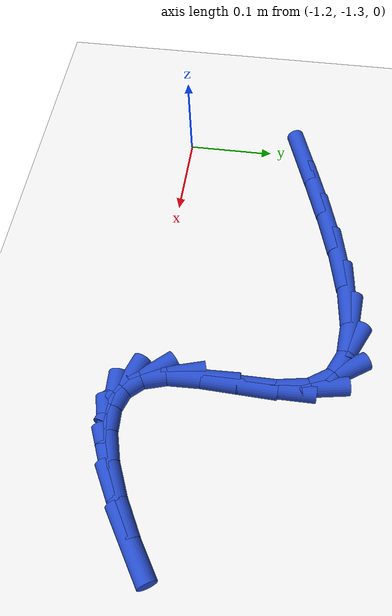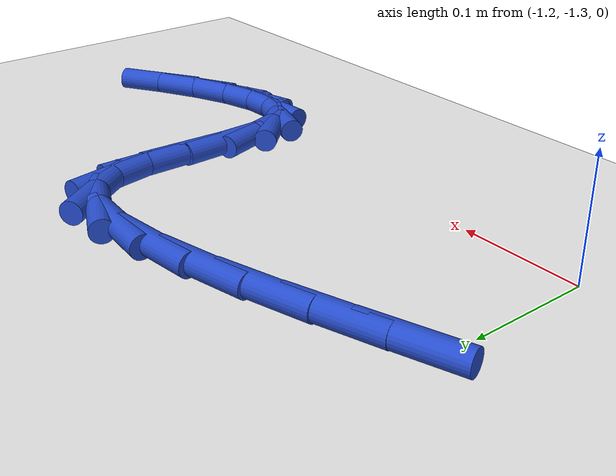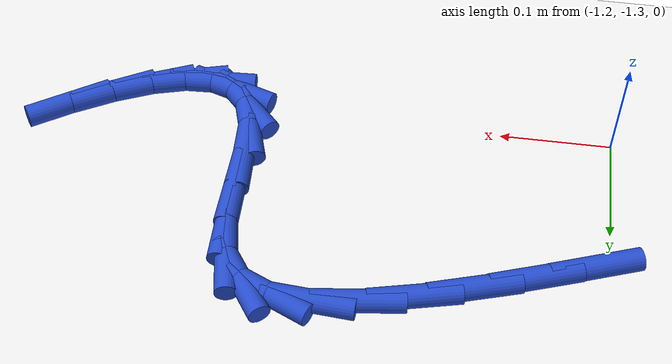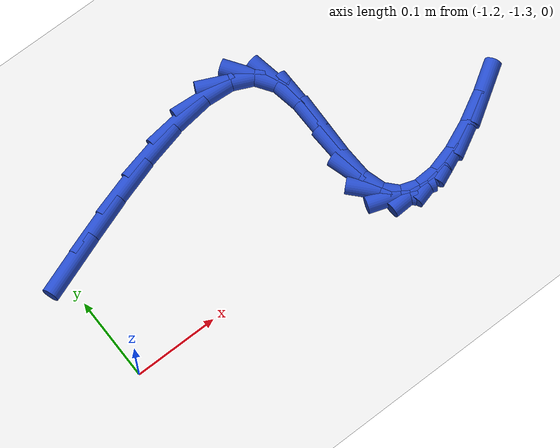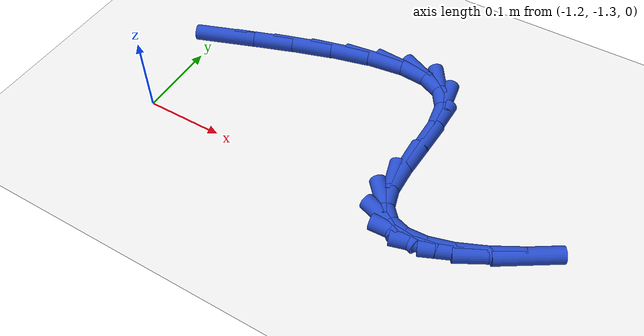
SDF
<sdf version="1.6">
 <world name="default">
  <model name="ground_plane">
   <static>1</static>
   <link name="link">
    <collision name="collision">
     <geometry><plane><normal>0 0 1</normal><size>100 100</size></plane></geometry>
     <surface><friction><ode><mu>100</mu><mu2>50</mu2></ode></friction></surface>
    </collision>
    <visual name="visual">
     <cast_shadows>0</cast_shadows>
     <geometry><plane><normal>0 0 1</normal><size>100 100</size></plane></geometry>
     <material>
      <script><uri>file://media/materials/scripts/gazebo.material</uri><name>Gazebo/WhiteGlow</name></script>
     </material>
    </visual>
   </link>
  </model>
  <model name="line">
   <link name="link_181">
    <pose>-1.1869989615635659 -1.158813188304323 0.01 0 1.57 0.3467892698958422</pose>
    <collision name="collision">
     <geometry><cylinder><radius>0.01</radius><length>0.08</length></cylinder></geometry>
    </collision>
    <visual name="visual">
     <material>
      <script><name>Gazebo/Blue</name><uri>file://media/materials/scripts/gazebo.material</uri></script>
     </material>
     <geometry><cylinder><radius>0.01</radius><length>0.08</length></cylinder></geometry>
    </visual>
   </link>
   <link name="link_182">
    <pose>-1.137817968798792 -1.1410394629971914 0.01 0 1.57 0.33352849293146286</pose>
    <collision name="collision">
     <geometry><cylinder><radius>0.01</radius><length>0.08</length></cylinder></geometry>
    </collision>
    <visual name="visual">
     <material>
      <script><name>Gazebo/Blue</name><uri>file://media/materials/scripts/gazebo.material</uri></script>
     </material>
     <geometry><cylinder><radius>0.01</radius><length>0.08</length></cylinder></geometry>
    </visual>
   </link>
   <link name="link_183">
    <pose>-1.088065815022067 -1.1238017287109445 0.01 0 1.57 0.29885545738115465</pose>
    <collision name="collision">
     <geometry><cylinder><radius>0.01</radius><length>0.08</length></cylinder></geometry>
    </collision>
    <visual name="visual">
     <material>
      <script><name>Gazebo/Blue</name><uri>file://media/materials/scripts/gazebo.material</uri></script>
     </material>
     <geometry><cylinder><radius>0.01</radius><length>0.08</length></cylinder></geometry>
    </visual>
   </link>
   <link name="link_184">
    <pose>-1.0395465777060409 -1.108853794461204 0.01 0 1.57 0.23530769621935638</pose>
    <collision name="collision">
     <geometry><cylinder><radius>0.01</radius><length>0.08</length></cylinder></geometry>
    </collision>
    <visual name="visual">
     <material>
      <script><name>Gazebo/Blue</name><uri>file://media/materials/scripts/gazebo.material</uri></script>
     </material>
     <geometry><cylinder><radius>0.01</radius><length>0.08</length></cylinder></geometry>
    </visual>
   </link>
   <link name="link_185">
    <pose>-0.9940643343233619 -1.0979494692635923 0.01 0 1.57 0.12500327289554553</pose>
    <collision name="collision">
     <geometry><cylinder><radius>0.01</radius><length>0.08</length></cylinder></geometry>
    </collision>
    <visual name="visual">
     <material>
      <script><name>Gazebo/Blue</name><uri>file://media/materials/scripts/gazebo.material</uri></script>
     </material>
     <geometry><cylinder><radius>0.01</radius><length>0.08</length></cylinder></geometry>
    </visual>
   </link>
   <link name="link_186">
    <pose>-0.9534231623466829 -1.0928425621337317 0.01 0 1.57 -0.07177665701591197</pose>
    <collision name="collision">
     <geometry><cylinder><radius>0.01</radius><length>0.08</length></cylinder></geometry>
    </collision>
    <visual name="visual">
     <material>
      <script><name>Gazebo/Blue</name><uri>file://media/materials/scripts/gazebo.material</uri></script>
     </material>
     <geometry><cylinder><radius>0.01</radius><length>0.08</length></cylinder></geometry>
    </visual>
   </link>
   <link name="link_187">
    <pose>-0.9194271392486515 -1.0952868820872437 0.01 0 1.57 -0.4310686164614578</pose>
    <collision name="collision">
     <geometry><cylinder><radius>0.01</radius><length>0.08</length></cylinder></geometry>
    </collision>
    <visual name="visual">
     <material>
      <script><name>Gazebo/Blue</name><uri>file://media/materials/scripts/gazebo.material</uri></script>
     </material>
     <geometry><cylinder><radius>0.01</radius><length>0.08</length></cylinder></geometry>
    </visual>
   </link>
   <link name="link_188">
    <pose>-0.8938803425019173 -1.10703623813975 0.01 0 1.57 -0.9777459284194076</pose>
    <collision name="collision">
     <geometry><cylinder><radius>0.01</radius><length>0.08</length></cylinder></geometry>
    </collision>
    <visual name="visual">
     <material>
      <script><name>Gazebo/Blue</name><uri>file://media/materials/scripts/gazebo.material</uri></script>
     </material>
     <geometry><cylinder><radius>0.01</radius><length>0.08</length></cylinder></geometry>
    </visual>
   </link>
   <link name="link_189">
    <pose>-0.8785419867807764 -1.1297940297335651 0.01 0 1.57 -1.3996971862016356</pose>
    <collision name="collision">
     <geometry><cylinder><radius>0.01</radius><length>0.08</length></cylinder></geometry>
    </collision>
    <visual name="visual">
     <material>
      <script><name>Gazebo/Blue</name><uri>file://media/materials/scripts/gazebo.material</uri></script>
     </material>
     <geometry><cylinder><radius>0.01</radius><length>0.08</length></cylinder></geometry>
    </visual>
   </link>
   <link name="link_190">
    <pose>-0.8728616594739608 -1.1626684698706167 0.01 0 1.57 1.569455895906045</pose>
    <collision name="collision">
     <geometry><cylinder><radius>0.01</radius><length>0.08</length></cylinder></geometry>
    </collision>
    <visual name="visual">
     <material>
      <script><name>Gazebo/Blue</name><uri>file://media/materials/scripts/gazebo.material</uri></script>
     </material>
     <geometry><cylinder><radius>0.01</radius><length>0.08</length></cylinder></geometry>
    </visual>
   </link>
   <link name="link_191">
    <pose>-0.8729130060005719 -1.200974432741035 0.01 0 1.57 1.5298179619590713</pose>
    <collision name="collision">
     <geometry><cylinder><radius>0.01</radius><length>0.08</length></cylinder></geometry>
    </collision>
    <visual name="visual">
     <material>
      <script><name>Gazebo/Blue</name><uri>file://media/materials/scripts/gazebo.material</uri></script>
     </material>
     <geometry><cylinder><radius>0.01</radius><length>0.08</length></cylinder></geometry>
    </visual>
   </link>
   <link name="link_192">
    <pose>-0.8745018662266067 -1.23972587586999 0.01 0 1.57 -1.5395945674939941</pose>
    <collision name="collision">
     <geometry><cylinder><radius>0.01</radius><length>0.08</length></cylinder></geometry>
    </collision>
    <visual name="visual">
     <material>
      <script><name>Gazebo/Blue</name><uri>file://media/materials/scripts/gazebo.material</uri></script>
     </material>
     <geometry><cylinder><radius>0.01</radius><length>0.08</length></cylinder></geometry>
    </visual>
   </link>
   <link name="link_193">
    <pose>-0.8734340800180621 -1.2739367567826478 0.01 0 1.57 -1.2845378045652014</pose>
    <collision name="collision">
     <geometry><cylinder><radius>0.01</radius><length>0.08</length></cylinder></geometry>
    </collision>
    <visual name="visual">
     <material>
      <script><name>Gazebo/Blue</name><uri>file://media/materials/scripts/gazebo.material</uri></script>
     </material>
     <geometry><cylinder><radius>0.01</radius><length>0.08</length></cylinder></geometry>
    </visual>
   </link>
   <link name="link_194">
    <pose>-0.8660016468021637 -1.2991877120697675 0.01 0 1.57 -0.8292545519188046</pose>
    <collision name="collision">
     <geometry><cylinder><radius>0.01</radius><length>0.08</length></cylinder></geometry>
    </collision>
    <visual name="visual">
     <material>
      <script><name>Gazebo/Blue</name><uri>file://media/materials/scripts/gazebo.material</uri></script>
     </material>
     <geometry><cylinder><radius>0.01</radius><length>0.08</length></cylinder></geometry>
    </visual>
   </link>
   <link name="link_195">
    <pose>-0.8517039152356661 -1.3147979403279983 0.01 0 1.57 -0.32242149972134077</pose>
    <collision name="collision">
     <geometry><cylinder><radius>0.01</radius><length>0.08</length></cylinder></geometry>
    </collision>
    <visual name="visual">
     <material>
      <script><name>Gazebo/Blue</name><uri>file://media/materials/scripts/gazebo.material</uri></script>
     </material>
     <geometry><cylinder><radius>0.01</radius><length>0.08</length></cylinder></geometry>
    </visual>
   </link>
   <link name="link_196">
    <pose>-0.8313396122812862 -1.3216012261932095 0.01 0 1.57 0.045448283156159945</pose>
    <collision name="collision">
     <geometry><cylinder><radius>0.01</radius><length>0.08</length></cylinder></geometry>
    </collision>
    <visual name="visual">
     <material>
      <script><name>Gazebo/Blue</name><uri>file://media/materials/scripts/gazebo.material</uri></script>
     </material>
     <geometry><cylinder><radius>0.01</radius><length>0.08</length></cylinder></geometry>
    </visual>
   </link>
   <link name="link_197">
    <pose>-0.8057111537662182 -1.3204356541288202 0.01 0 1.57 0.26903163822406223</pose>
    <collision name="collision">
     <geometry><cylinder><radius>0.01</radius><length>0.08</length></cylinder></geometry>
    </collision>
    <visual name="visual">
     <material>
      <script><name>Gazebo/Blue</name><uri>file://media/materials/scripts/gazebo.material</uri></script>
     </material>
     <geometry><cylinder><radius>0.01</radius><length>0.08</length></cylinder></geometry>
    </visual>
   </link>
   <link name="link_198">
    <pose>-0.775620955517656 -1.3121393085982498 0.01 0 1.57 0.40801546287871043</pose>
    <collision name="collision">
     <geometry><cylinder><radius>0.01</radius><length>0.08</length></cylinder></geometry>
    </collision>
    <visual name="visual">
     <material>
      <script><name>Gazebo/Blue</name><uri>file://media/materials/scripts/gazebo.material</uri></script>
     </material>
     <geometry><cylinder><radius>0.01</radius><length>0.08</length></cylinder></geometry>
    </visual>
   </link>
   <link name="link_199">
    <pose>-0.7418714333627939 -1.297550274064918 0.01 0 1.57 0.5009558157057882</pose>
    <collision name="collision">
     <geometry><cylinder><radius>0.01</radius><length>0.08</length></cylinder></geometry>
    </collision>
    <visual name="visual">
     <material>
      <script><name>Gazebo/Blue</name><uri>file://media/materials/scripts/gazebo.material</uri></script>
     </material>
     <geometry><cylinder><radius>0.01</radius><length>0.08</length></cylinder></geometry>
    </visual>
   </link>
   <link name="link_200">
    <pose>-0.7052650031288246 -1.2775066349922422 0.01 0 1.57 0.5677917736024511</pose>
    <collision name="collision">
     <geometry><cylinder><radius>0.01</radius><length>0.08</length></cylinder></geometry>
    </collision>
    <visual name="visual">
     <material>
      <script><name>Gazebo/Blue</name><uri>file://media/materials/scripts/gazebo.material</uri></script>
     </material>
     <geometry><cylinder><radius>0.01</radius><length>0.08</length></cylinder></geometry>
    </visual>
   </link>
  </model>
 </world>
</sdf>
